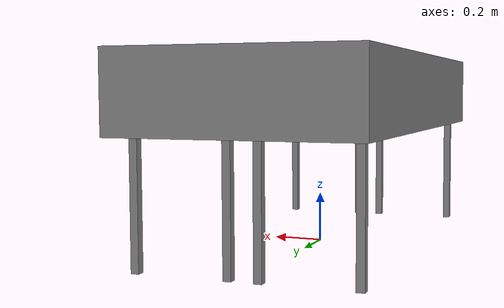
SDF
<?xml version="1.0"?>
<sdf version="1.6">
  <model name="rwc2015/dinnertable">
    <link name="1_link">
      <collision name="1_col">
        <geometry>
          <box>
            <size>0.915 1.83 0.3</size>
          </box>
        </geometry>
      </collision>
      <visual name="1_vis">
        <geometry>
          <box>
            <size>0.915 1.83 0.3</size>
          </box>
        </geometry>
        <material>
          <ambient>0.5 0.5 0.5 1</ambient>
        </material>
      </visual>
      <pose>0.0 0.0 0.625 0 0 0</pose>
    </link>
    <link name="2_link">
      <collision name="2_col">
        <geometry>
          <box>
            <size>0.03 0.03 0.75</size>
          </box>
        </geometry>
      </collision>
      <visual name="2_vis">
        <geometry>
          <box>
            <size>0.03 0.03 0.75</size>
          </box>
        </geometry>
        <material>
          <ambient>0.5 0.5 0.5 1</ambient>
        </material>
      </visual>
      <pose>-0.4025 -0.79 0.375 0 0 0</pose>
    </link>
    <link name="3_link">
      <collision name="3_col">
        <geometry>
          <box>
            <size>0.03 0.03 0.75</size>
          </box>
        </geometry>
      </collision>
      <visual name="3_vis">
        <geometry>
          <box>
            <size>0.03 0.03 0.75</size>
          </box>
        </geometry>
        <material>
          <ambient>0.5 0.5 0.5 1</ambient>
        </material>
      </visual>
      <pose>-0.4025 0.79 0.375 0 0 0</pose>
    </link>
    <link name="4_link">
      <collision name="4_col">
        <geometry>
          <box>
            <size>0.03 0.03 0.75</size>
          </box>
        </geometry>
      </collision>
      <visual name="4_vis">
        <geometry>
          <box>
            <size>0.03 0.03 0.75</size>
          </box>
        </geometry>
        <material>
          <ambient>0.5 0.5 0.5 1</ambient>
        </material>
      </visual>
      <pose>0.4025 -0.79 0.375 0 0 0</pose>
    </link>
    <link name="5_link">
      <collision name="5_col">
        <geometry>
          <box>
            <size>0.03 0.03 0.75</size>
          </box>
        </geometry>
      </collision>
      <visual name="5_vis">
        <geometry>
          <box>
            <size>0.03 0.03 0.75</size>
          </box>
        </geometry>
        <material>
          <ambient>0.5 0.5 0.5 1</ambient>
        </material>
      </visual>
      <pose>0.4025 0.79 0.375 0 0 0</pose>
    </link>
    <link name="6_link">
      <collision name="6_col">
        <geometry>
          <box>
            <size>0.03 0.03 0.75</size>
          </box>
        </geometry>
      </collision>
      <visual name="6_vis">
        <geometry>
          <box>
            <size>0.03 0.03 0.75</size>
          </box>
        </geometry>
        <material>
          <ambient>0.5 0.5 0.5 1</ambient>
        </material>
      </visual>
      <pose>-0.055 -0.79 0.375 0 0 0</pose>
    </link>
    <link name="7_link">
      <collision name="7_col">
        <geometry>
          <box>
            <size>0.03 0.03 0.75</size>
          </box>
        </geometry>
      </collision>
      <visual name="7_vis">
        <geometry>
          <box>
            <size>0.03 0.03 0.75</size>
          </box>
        </geometry>
        <material>
          <ambient>0.5 0.5 0.5 1</ambient>
        </material>
      </visual>
      <pose>-0.055 0.79 0.375 0 0 0</pose>
    </link>
    <link name="8_link">
      <collision name="8_col">
        <geometry>
          <box>
            <size>0.03 0.03 0.75</size>
          </box>
        </geometry>
      </collision>
      <visual name="8_vis">
        <geometry>
          <box>
            <size>0.03 0.03 0.75</size>
          </box>
        </geometry>
        <material>
          <ambient>0.5 0.5 0.5 1</ambient>
        </material>
      </visual>
      <pose>0.055 -0.79 0.375 0 0 0</pose>
    </link>
    <link name="9_link">
      <collision name="9_col">
        <geometry>
          <box>
            <size>0.03 0.03 0.75</size>
          </box>
        </geometry>
      </collision>
      <visual name="9_vis">
        <geometry>
          <box>
            <size>0.03 0.03 0.75</size>
          </box>
        </geometry>
        <material>
          <ambient>0.5 0.5 0.5 1</ambient>
        </material>
      </visual>
      <pose>0.055 0.79 0.375 0 0 0</pose>
    </link>
    <link name="in_front_of">
      <virtual_volume name="in_front_of_vv">
        <geometry>
          <box>
            <size>0.3 1.7 1</size>
          </box>
        </geometry>
        <pose>0.0 0.85 0.5 0 0 0</pose>
      </virtual_volume>
    </link>
    <link name="in_front_of_pos2">
      <virtual_volume name="in_front_of_pos2_vv">
        <geometry>
          <box>
            <size>0.3 1.7 1</size>
          </box>
        </geometry>
        <pose>0.0 -0.85 0.5 0 0 0</pose>
      </virtual_volume>
    </link>
    <link name="in_front_of_pos3">
      <virtual_volume name="in_front_of_pos3_vv">
        <geometry>
          <box>
            <size>1.15 1.0 1</size>
          </box>
        </geometry>
        <pose>0.425 -1.5 0.5 0 0 0</pose>
      </virtual_volume>
    </link>
    <static>true</static>
  </model>
</sdf>
